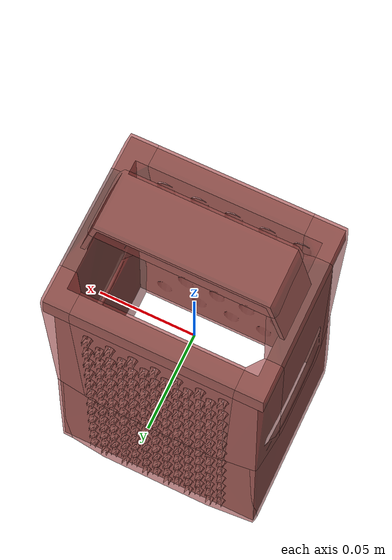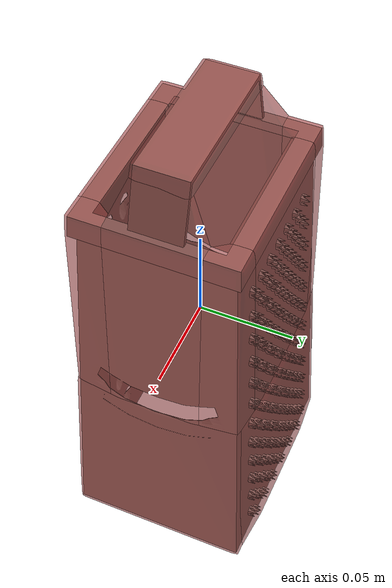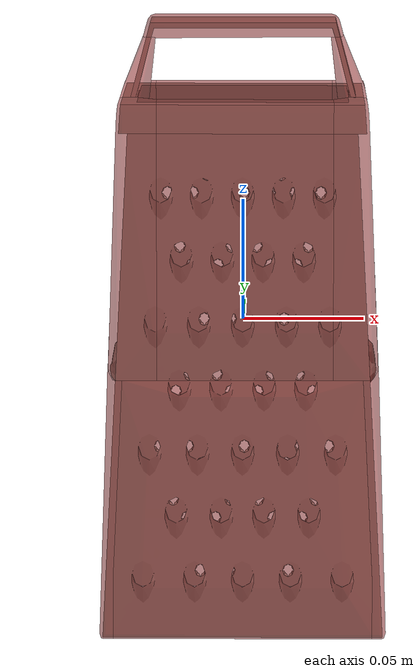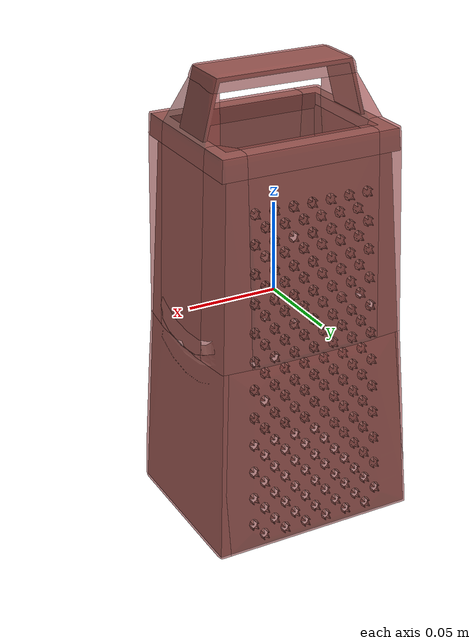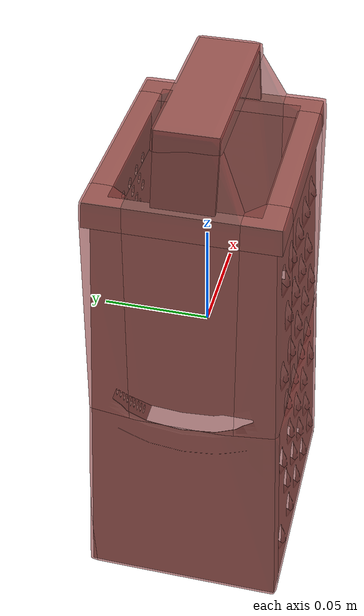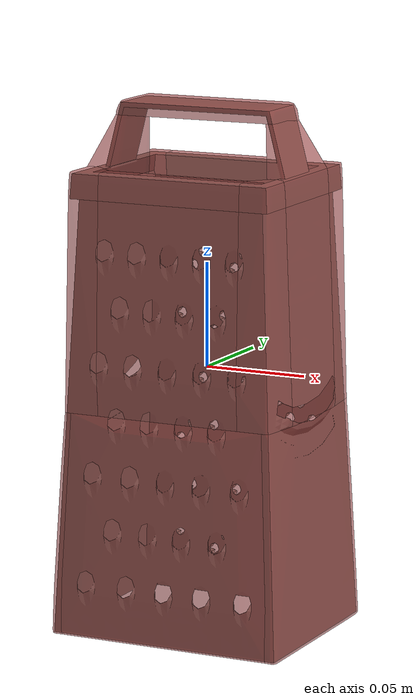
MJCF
<mujoco model="model">
  <option timestep="0.002" gravity="0.0 0.0 -9.81"/>
  <compiler angle="radian"/>
  <asset>
    <mesh file="visual/CheeseGrater012.obj" name="CheeseGrater012_vis"/>
    <mesh file="visual/Prop.obj" name="CheeseGrater012_Prop_vis"/>
    <texture file="visual/T_BC001.png" name="CheeseGrater012_material" type="2d"/>
    <material name="CheeseGrater012_material" rgba="1 1 1 1.0" texture="CheeseGrater012_material" shininess="0.3" specular="0.3"/>
    <texture file="visual/T_BC001.png" name="CheeseGrater012_Prop_material" type="2d"/>
    <material name="CheeseGrater012_Prop_material" rgba="1 1 1 1.0" texture="CheeseGrater012_Prop_material" shininess="2" specular="2"/>
    <mesh file="collision/collision_mesh_collision_0.obj" name="CheeseGrater012_collision_mesh_0"/>
    <mesh file="collision/collision_mesh_collision_1.obj" name="CheeseGrater012_collision_mesh_1"/>
    <mesh file="collision/collision_mesh_collision_2.obj" name="CheeseGrater012_collision_mesh_2"/>
    <mesh file="collision/collision_mesh_collision_3.obj" name="CheeseGrater012_collision_mesh_3"/>
    <mesh file="collision/collision_mesh_collision_4.obj" name="CheeseGrater012_collision_mesh_4"/>
    <mesh file="collision/collision_mesh_collision_5.obj" name="CheeseGrater012_collision_mesh_5"/>
    <mesh file="collision/collision_mesh_collision_6.obj" name="CheeseGrater012_collision_mesh_6"/>
    <mesh file="collision/collision_mesh_collision_7.obj" name="CheeseGrater012_collision_mesh_7"/>
    <mesh file="collision/collision_mesh_collision_8.obj" name="CheeseGrater012_collision_mesh_8"/>
    <mesh file="collision/collision_mesh_collision_9.obj" name="CheeseGrater012_collision_mesh_9"/>
    <mesh file="collision/collision_mesh_collision_10.obj" name="CheeseGrater012_collision_mesh_10"/>
    <mesh file="collision/collision_mesh_collision_11.obj" name="CheeseGrater012_collision_mesh_11"/>
    <mesh file="collision/collision_mesh_collision_12.obj" name="CheeseGrater012_collision_mesh_12"/>
  </asset>
  <default>
    <default class="visual">
      <geom conaffinity="0" contype="0" group="1" type="mesh"/>
    </default>
    <default class="collision">
      <geom group="0" rgba="0.5 0 0 0.5" density="1.0" solref="0.004 1" solimp="0.998 0.998 0.001"/>
    </default>
    <default class="spawn">
      <geom group="0" rgba="1 1 1 0.5" contype="0" conaffinity="0"/>
      <site group="0" rgba="1 1 1 0.5"/>
    </default>
    <default class="region">
      <geom group="1" conaffinity="0" contype="0" rgba="0 1 0 0" mass="0"/>
    </default>
  </default>
  <worldbody>
    <body>
      <body name="object">
        <geom mesh="CheeseGrater012_vis" type="mesh" solimp="0.998 0.998 0.001" solref="0.001 1" friction="0.95 0.3 0.1" class="visual" material="CheeseGrater012_material"/>
        <body name="CheeseGrater012_Prop">
          <geom mesh="CheeseGrater012_Prop_vis" type="mesh" solimp="0.998 0.998 0.001" solref="0.001 1" friction="0.95 0.3 0.1" class="visual" material="CheeseGrater012_Prop_material"/>
        </body>
        <geom class="region" name="reg_bbox" type="box" pos="9.050000000024316e-07 -1.751000000000183e-05 0.00030247999999999386" size="0.058808935 0.050707630000000004 0.12607165"/>
        <geom mesh="CheeseGrater012_collision_mesh_0" type="mesh" class="collision"/>
        <geom mesh="CheeseGrater012_collision_mesh_1" type="mesh" class="collision"/>
        <geom mesh="CheeseGrater012_collision_mesh_2" type="mesh" class="collision"/>
        <geom mesh="CheeseGrater012_collision_mesh_3" type="mesh" class="collision"/>
        <geom mesh="CheeseGrater012_collision_mesh_4" type="mesh" class="collision"/>
        <geom mesh="CheeseGrater012_collision_mesh_5" type="mesh" class="collision"/>
        <geom mesh="CheeseGrater012_collision_mesh_6" type="mesh" class="collision"/>
        <geom mesh="CheeseGrater012_collision_mesh_7" type="mesh" class="collision"/>
        <geom mesh="CheeseGrater012_collision_mesh_8" type="mesh" class="collision"/>
        <geom mesh="CheeseGrater012_collision_mesh_9" type="mesh" class="collision"/>
        <geom mesh="CheeseGrater012_collision_mesh_10" type="mesh" class="collision"/>
        <geom mesh="CheeseGrater012_collision_mesh_11" type="mesh" class="collision"/>
        <geom mesh="CheeseGrater012_collision_mesh_12" type="mesh" class="collision"/>
      </body>
    </body>
  </worldbody>
  <actuator/>
</mujoco>
